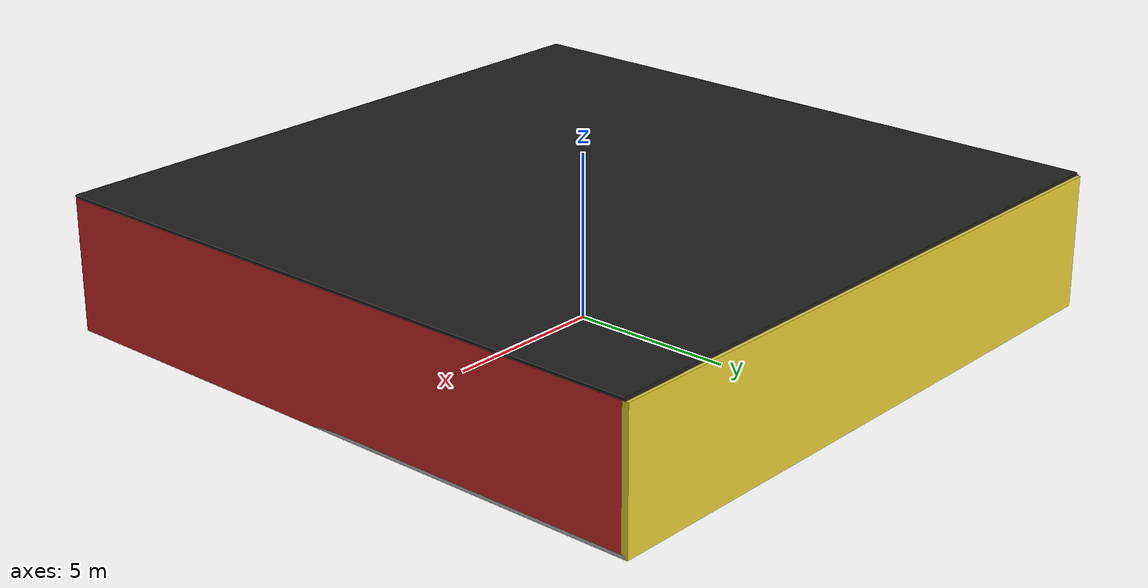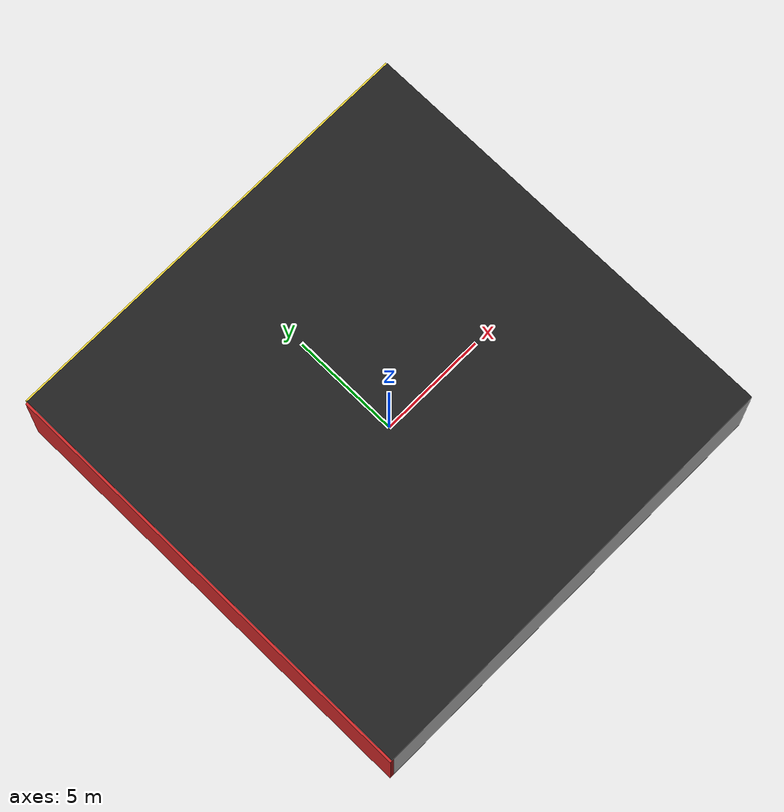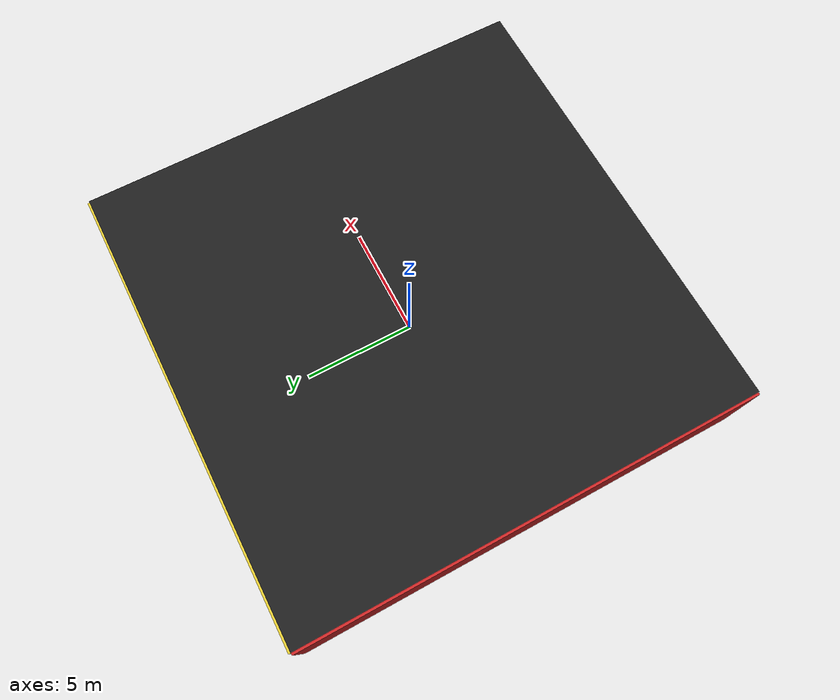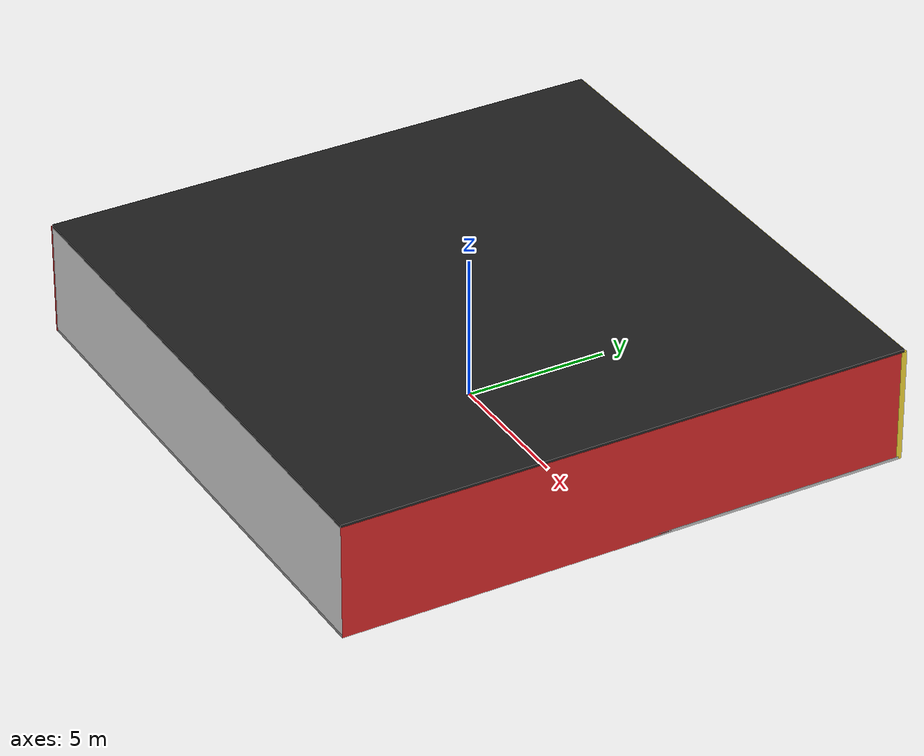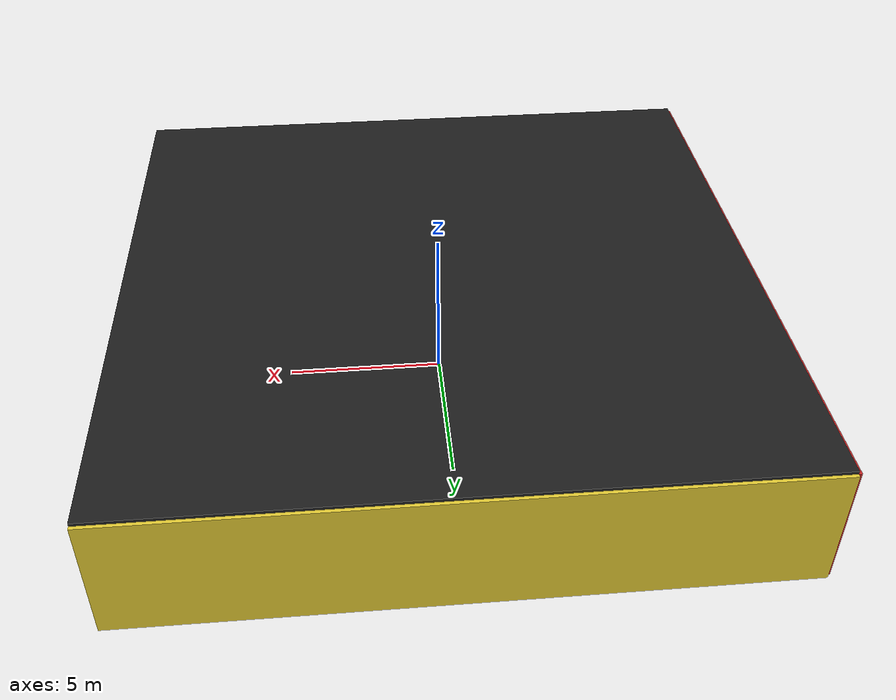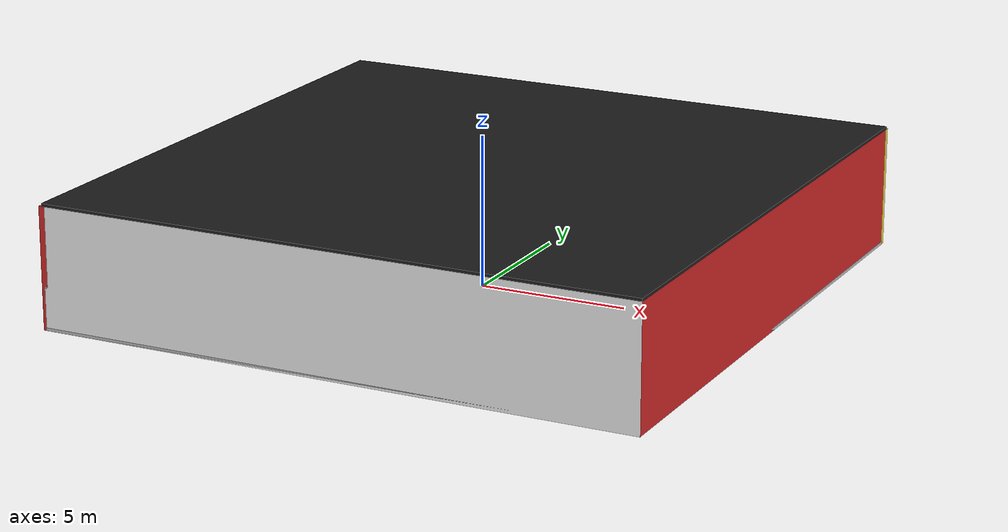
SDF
<sdf version="1.4">
 <world name="default">
  <physics type="ode">
   <max_step_size>0.001</max_step_size>
   <real_time_factor>1</real_time_factor>
   <real_time_update_rate>1000</real_time_update_rate>
   <gravity>0 0 -9.8</gravity>
  </physics>
  <scene><ambient>0.4 0.4 0.4 1</ambient><background>0.7 0.7 0.7 1</background><shadows>1</shadows></scene>
  <model name="Surrounding">
   <static>1</static>
   <link name="Ceiling">
    <collision name="Ceiling_Collision"><geometry><box><size>20 20 0.1</size></box></geometry></collision>
    <visual name="Ceiling_Visual">
     <geometry><box><size>20 20 0.1</size></box></geometry>
     <material>
      <script><uri>file://media/materials/scripts/gazebo.material</uri><name>Gazebo/FlatBlack</name></script>
     </material>
    </visual>
    <pose>0 0 4.05 0 0 0</pose>
   </link>
   <link name="Wall_South">
    <collision name="Wall_South_Collision">
     <geometry><box><size>20 0 4</size></box></geometry>
     <pose>0 0 2 0 -0 0</pose>
    </collision>
    <visual name="Wall_South_Visual">
     <pose>0 0 2 0 -0 0</pose>
     <geometry><box><size>20 0 4</size></box></geometry>
     <material>
      <script><uri>file://media/materials/scripts/gazebo.material</uri><name>Gazebo/White</name></script>
     </material>
    </visual>
    <velocity_decay><linear>0</linear><angular>0</angular></velocity_decay>
    <pose>0 -10 0 0 -0 0</pose>
   </link>
   <link name="Wall_East">
    <collision name="Wall_21_Collision">
     <geometry><box><size>20 0 4</size></box></geometry>
     <pose>0 0 2 0 -0 0</pose>
    </collision>
    <visual name="Wall_21_Visual">
     <pose>0 0 2 0 -0 0</pose>
     <geometry><box><size>20 0 4</size></box></geometry>
     <material>
      <script><uri>file://media/materials/scripts/gazebo.material</uri><name>Gazebo/Red</name></script>
     </material>
    </visual>
    <velocity_decay><linear>0</linear><angular>0</angular></velocity_decay>
    <pose>10 0 0 0 -0 1.5708</pose>
   </link>
   <link name="Wall_North">
    <collision name="Wall_22_Collision">
     <geometry><box><size>20 0.2 4</size></box></geometry>
     <pose>0 0 2 0 -0 0</pose>
    </collision>
    <visual name="Wall_22_Visual">
     <pose>0 0 2 0 -0 0</pose>
     <geometry><box><size>20 0.2 4</size></box></geometry>
     <material>
      <script><uri>file://media/materials/scripts/gazebo.material</uri><name>Gazebo/ZincYellow</name></script>
     </material>
    </visual>
    <velocity_decay><linear>0</linear><angular>0</angular></velocity_decay>
    <pose>0 10 0 0 -0 0</pose>
   </link>
   <link name="Wall_West">
    <collision name="Wall_23_Collision">
     <geometry><box><size>20 0.2 4</size></box></geometry>
     <pose>0 0 2 0 -0 0</pose>
    </collision>
    <visual name="Wall_23_Visual">
     <pose>0 0 2 0 -0 0</pose>
     <geometry><box><size>20 0.2 4</size></box></geometry>
     <material>
      <script><uri>file://media/materials/scripts/gazebo.material</uri><name>Gazebo/RedBright</name></script>
     </material>
    </visual>
    <velocity_decay><linear>0</linear><angular>0</angular></velocity_decay>
    <pose>-10 0 0 0 0 -1.5708</pose>
   </link>
   <link name="Ground_link">
    <collision name="collision">
     <pose>0 0 .05 0 -0 0</pose>
     <geometry><box><size>20 20 0.1</size></box></geometry>
    </collision>
    <visual name="visual">
     <pose>0 0 .05 0 -0 0</pose>
     <geometry><box><size>20 20 0.1</size></box></geometry>
     <material>
      <script><uri>file://media/materials/scripts/gazebo.material</uri><name>Gazebo/PioneerBody</name></script>
     </material>
    </visual>
   </link>
   <static>1</static>
  </model>
  <spherical_coordinates>
   <surface_model>EARTH_WGS84</surface_model>
   <latitude_deg>0</latitude_deg>
   <longitude_deg>0</longitude_deg>
   <elevation>0</elevation>
   <heading_deg>0</heading_deg>
  </spherical_coordinates>
  <light name="lightball_0" type="diffuse">
   <diffuse>0.8 0.8 0.8 1</diffuse>
   <specular>0.2 0.2 0.2 1</specular>
   <attenuation>
    <range>100</range>
    <constant>0.7</constant>
    <linear>0.01</linear>
    <quadratic>0.001</quadratic>
   </attenuation>
   <direction>-0.5 0.1 -0.9</direction>
   <pose>2.13266354835 9.08707981879 2.8877284971 0 0 0</pose>
  </light>
  <light name="lightball_1" type="diffuse">
   <diffuse>0.8 0.8 0.8 1</diffuse>
   <specular>0.2 0.2 0.2 1</specular>
   <attenuation>
    <range>100</range>
    <constant>0.7</constant>
    <linear>0.01</linear>
    <quadratic>0.001</quadratic>
   </attenuation>
   <direction>-0.5 0.1 -0.9</direction>
   <pose>0.945173266913 -6.17603251587 2.05140185466 0 0 0</pose>
  </light>
  <light name="lightball_2" type="diffuse">
   <diffuse>0.8 0.8 0.8 1</diffuse>
   <specular>0.2 0.2 0.2 1</specular>
   <attenuation>
    <range>100</range>
    <constant>0.7</constant>
    <linear>0.01</linear>
    <quadratic>0.001</quadratic>
   </attenuation>
   <direction>-0.5 0.1 -0.9</direction>
   <pose>-8.36973572397 4.66907787675 1.68453182095 0 0 0</pose>
  </light>
  <light name="lightball_3" type="diffuse">
   <diffuse>0.8 0.8 0.8 1</diffuse>
   <specular>0.2 0.2 0.2 1</specular>
   <attenuation>
    <range>100</range>
    <constant>0.7</constant>
    <linear>0.01</linear>
    <quadratic>0.001</quadratic>
   </attenuation>
   <direction>-0.5 0.1 -0.9</direction>
   <pose>-1.11156007176 -3.83044978647 1.76659309352 0 0 0</pose>
  </light>
  <include>
   <uri>model://robocup_3Dsim_goal</uri>
   <pose>-1.05793990138 4.96537573898 0 0 0 1.30538363513</pose>
  </include>
  <include><uri>model://cabinet</uri><pose>-0.985166935119 8.01132889234 0 0 0 1.91706064847</pose></include>
  <include>
   <uri>model://construction_cone</uri>
   <pose>1.29873488871 4.82574104836 0 0 0 2.35708095194</pose>
  </include>
  <include><uri>model://table</uri><pose>5.20106031626 1.73582286328 0 0 0 2.50993998016</pose></include>
  <include>
   <uri>model://construction_cone</uri>
   <pose>6.85534567475 2.09791581032 0 0 0 2.40622528753</pose>
  </include>
 </world>
</sdf>

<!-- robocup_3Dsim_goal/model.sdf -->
<sdf version="1.5">
  <model name="robocup_3d_goal">
    <static>true</static>
    <link name="left_post">
      <pose>0 1.05 0.45 0 0 0</pose>
      <collision name="collision">
        <geometry>
          <cylinder>
            <radius>0.05</radius>
            <length>0.9</length>
          </cylinder>
        </geometry>
      </collision>
      <visual name="visual">
        <geometry>
          <cylinder>
            <radius>0.05</radius>
            <length>0.9</length>
          </cylinder>
        </geometry>
        <material>
          <script>
            <uri>file://media/materials/scripts/gazebo.material</uri>
            <name>Gazebo/ZincYellow</name>
          </script>
        </material>
      </visual>
    </link>
    <link name="left_support_horiz_lower">
      <pose>0.30 1.05 0.01 0 0 0</pose>
      <collision name="collision">
        <geometry>
          <box>
            <size>0.50 0.02 0.02</size>
          </box>
        </geometry>
      </collision>
      <visual name="visual">
        <geometry>
          <box>
            <size>0.50 0.02 0.02</size>
          </box>
        </geometry>
        <material>
          <script>
            <uri>file://media/materials/scripts/gazebo.material</uri>
            <name>Gazebo/White</name>
          </script>
        </material>
      </visual>
    </link>
    <link name="left_support_horiz_upper">
      <pose>0.30 1.05 0.79 0 0 0</pose>
      <collision name="collision">
        <geometry>
          <box>
            <size>0.50 0.02 0.02</size>
          </box>
        </geometry>
      </collision>
      <visual name="visual">
        <geometry>
          <box>
            <size>0.50 0.02 0.02</size>
          </box>
        </geometry>
        <material>
          <script>
            <uri>file://media/materials/scripts/gazebo.material</uri>
            <name>Gazebo/White</name>
          </script>
        </material>
      </visual>
    </link>
    <link name="left_support_vertical">
      <pose>0.56 1.05 0.4 0 1.5708 0</pose>
      <collision name="collision">
        <geometry>
          <box>
            <size>0.80 0.02 0.02</size>
          </box>
        </geometry>
      </collision>
      <visual name="visual">
        <geometry>
          <box>
            <size>0.80 0.02 0.02</size>
          </box>
        </geometry>
        <material>
          <script>
            <uri>file://media/materials/scripts/gazebo.material</uri>
            <name>Gazebo/White</name>
          </script>
        </material>
      </visual>
    </link>
    <link name="right_support_horiz_lower">
      <pose>0.30 -1.05 0.01 0 0 0</pose>
      <collision name="collision">
        <geometry>
          <box>
            <size>0.50 0.02 0.02</size>
          </box>
        </geometry>
      </collision>
      <visual name="visual">
        <geometry>
          <box>
            <size>0.50 0.02 0.02</size>
          </box>
        </geometry>
        <material>
          <script>
            <uri>file://media/materials/scripts/gazebo.material</uri>
            <name>Gazebo/White</name>
          </script>
        </material>
      </visual>
    </link>
    <link name="right_support_horiz_upper">
      <pose>0.30 -1.05 0.79 0 0 0</pose>
      <collision name="collision">
        <geometry>
          <box>
            <size>0.50 0.02 0.02</size>
          </box>
        </geometry>
      </collision>
      <visual name="visual">
        <geometry>
          <box>
            <size>0.50 0.02 0.02</size>
          </box>
        </geometry>
        <material>
          <script>
            <uri>file://media/materials/scripts/gazebo.material</uri>
            <name>Gazebo/White</name>
          </script>
        </material>
      </visual>
    </link>
    <link name="right_support_vertical">
      <pose>0.56 -1.05 0.4 0 1.5708 0</pose>
      <collision name="collision">
        <geometry>
          <box>
            <size>0.80 0.02 0.02</size>
          </box>
        </geometry>
      </collision>
      <visual name="visual">
        <geometry>
          <box>
            <size>0.80 0.02 0.02</size>
          </box>
        </geometry>
        <material>
          <script>
            <uri>file://media/materials/scripts/gazebo.material</uri>
            <name>Gazebo/White</name>
          </script>
        </material>
      </visual>
    </link>
    <link name="center_support_horiz_lower">
      <pose>0.56 0 0.01 0 1.5708 0</pose>
      <collision name="collision">
        <geometry>
          <box>
            <size>0.02 2.08 0.02</size>
          </box>
        </geometry>
      </collision>
      <visual name="visual">
        <geometry>
          <box>
            <size>0.02 2.08 0.02</size>
          </box>
        </geometry>
        <material>
          <script>
            <uri>file://media/materials/scripts/gazebo.material</uri>
            <name>Gazebo/White</name>
          </script>
        </material>
      </visual>
    </link>
    <link name="center_support_horiz_upper">
      <pose>0.56 0 0.79 0 1.5708 0</pose>
      <collision name="collision">
        <geometry>
          <box>
            <size>0.02 2.08 0.02</size>
          </box>
        </geometry>
      </collision>
      <visual name="visual">
        <geometry>
          <box>
            <size>0.02 2.08 0.02</size>
          </box>
        </geometry>
        <material>
          <script>
            <uri>file://media/materials/scripts/gazebo.material</uri>
            <name>Gazebo/White</name>
          </script>
        </material>
      </visual>
    </link>
    <link name="right_post">
      <pose>0 -1.05 0.45 0 0 0</pose>
      <collision name="collision">
        <geometry>
          <cylinder>
            <radius>0.05</radius>
            <length>0.9</length>
          </cylinder>
        </geometry>
      </collision>
      <visual name="visual">
        <geometry>
          <cylinder>
            <radius>0.05</radius>
            <length>0.9</length>
          </cylinder>
        </geometry>
        <material>
          <script>
            <uri>file://media/materials/scripts/gazebo.material</uri>
            <name>Gazebo/ZincYellow</name>
          </script>
        </material>
      </visual>
    </link>
    <link name="crossbar">
      <pose>0 0 0.85 1.57 1.57 0</pose>
      <collision name="collision">
        <geometry>
          <cylinder>
            <radius>0.05</radius>
            <length>2.0</length>
          </cylinder>
        </geometry>
      </collision>
      <visual name="visual">
        <geometry>
          <cylinder>
            <radius>0.05</radius>
            <length>2.0</length>
          </cylinder>
        </geometry>
        <material>
          <script>
            <uri>file://media/materials/scripts/gazebo.material</uri>
            <name>Gazebo/ZincYellow</name>
          </script>
        </material>
      </visual>
    </link>
    <link name="center_net">
      <pose>0.56 0 0.40 0 0 0</pose>
      <collision name="collision">
        <geometry>
          <box>
            <size>0.01 2.1 0.80</size>
          </box>
        </geometry>
      </collision>
      <visual name="visual">
        <geometry>
          <box>
            <size>0.01 2.1 0.80</size>
          </box>
        </geometry>
        <material>
          <script>
            <uri>model://../model_source/models/robocup09_spl_field/materials/scripts/</uri>
            <uri>model://../model_source/models/robocup09_spl_field/materials/textures/</uri>
            <name>RoboCup/Net</name>
          </script>
        </material>
      </visual>
    </link>
    <link name="left_net">
      <pose>0.30 1.05 0.40 0 0 0</pose>
      <collision name="collision">
        <geometry>
          <box>
            <size>0.50 0.01 0.76</size>
          </box>
        </geometry>
      </collision>
      <visual name="visual">
        <geometry>
          <box>
            <size>0.50 0.01 0.76</size>
          </box>
        </geometry>
        <material>
          <script>
            <uri>model://../model_source/models/robocup09_spl_field/materials/scripts/</uri>
            <uri>model://../model_source/models/robocup09_spl_field/materials/textures/</uri>
            <name>RoboCup/Net</name>
          </script>
        </material>
      </visual>
    </link>
    <link name="right_net">
      <pose>0.30 -1.05 0.40 0 0 0</pose>
      <collision name="collision">
        <geometry>
          <box>
            <size>0.50 0.01 0.76</size>
          </box>
        </geometry>
      </collision>
      <visual name="visual">
        <geometry>
          <box>
            <size>0.50 0.01 0.76</size>
          </box>
        </geometry>
        <material>
          <script>
            <uri>model://../model_source/models/robocup09_spl_field/materials/scripts/</uri>
            <uri>model://../model_source/models/robocup09_spl_field/materials/textures/</uri>
            <name>RoboCup/Net</name>
          </script>
        </material>
      </visual>
    </link>
  </model>
</sdf>

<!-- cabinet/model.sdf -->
<sdf version="1.5">
  <model name="cabinet">
    <static>true</static>
    <link name="cabinet_bottom_plate">
      <inertial>
        <pose>0 0 -1 0 0 0</pose>
        <inertia>
          <ixx>2.050000</ixx>
          <ixy>0</ixy>
          <ixz>0</ixz>
          <iyy>2.050000</iyy>
          <iyz>0</iyz>
          <izz>2.050000</izz>
        </inertia>
        <mass>25.000000</mass>
      </inertial>
      <collision name="cabinet_bottom_plate_geom">
        <pose>0 0 0.010000 0 0 0</pose>
        <geometry>
          <box>
            <size>0.450000 0.450000 0.020000</size>
          </box>
        </geometry>
      </collision>
      <visual name="cabinet_bottom_plate_geom_visual">
        <pose>0 0 0.010000 0 0 0</pose>
        <geometry>
          <box>
            <size>0.450000 0.450000 0.020000</size>
          </box>
        </geometry>
        <material>
          <script>
            <uri>model://media/materials/scripts/gazebo.material</uri>
            <name>Gazebo/Wood</name>
          </script>
        </material>
      </visual>
      <collision name="cabinet_bottom_plate_geom_cabinet_back_plate">
        <pose>0.235000 0 0.510000 0 0 0</pose>
        <geometry>
          <box>
            <size>0.020000 0.450000 1.020000</size>
          </box>
        </geometry>
      </collision>
      <visual name="cabinet_bottom_plate_geom_cabinet_back_plate_visual">
        <pose>0.235000 0 0.510000 0 0 0</pose>
        <geometry>
          <box>
            <size>0.020000 0.450000 1.020000</size>
          </box>
        </geometry>
        <material>
          <script>
            <uri>model://media/materials/scripts/gazebo.material</uri>
            <name>Gazebo/Wood</name>
          </script>
        </material>
      </visual>
      <collision name="cabinet_bottom_plate_geom_cabinet_left_plate">
        <pose>0 0.235000 0.510000 0 0 0</pose>
        <geometry>
          <box>
            <size>0.450000 0.020000 1.020000</size>
          </box>
        </geometry>
      </collision>
      <visual name="cabinet_bottom_plate_geom_cabinet_left_plate_visual">
        <pose>0 0.235000 0.510000 0 0 0</pose>
        <geometry>
          <box>
            <size>0.450000 0.020000 1.020000</size>
          </box>
        </geometry>
        <material>
          <script>
            <uri>model://media/materials/scripts/gazebo.material</uri>
            <name>Gazebo/Wood</name>
          </script>
        </material>
      </visual>
      <collision name="cabinet_bottom_plate_geom_cabinet_middle_plate">
        <pose>0 0 0.510000 0 0 0</pose>
        <geometry>
          <box>
            <size>0.450000 0.450000 0.020000</size>
          </box>
        </geometry>
      </collision>
      <visual name="cabinet_bottom_plate_geom_cabinet_middle_plate_visual">
        <pose>0 0 0.510000 0 0 0</pose>
        <geometry>
          <box>
            <size>0.450000 0.450000 0.020000</size>
          </box>
        </geometry>
        <material>
          <script>
            <uri>model://media/materials/scripts/gazebo.material</uri>
            <name>Gazebo/Wood</name>
          </script>
        </material>
      </visual>
      <collision name="cabinet_bottom_plate_geom_cabinet_right_plate">
        <pose>0 -0.235000 0.510000 0 0 0</pose>
        <geometry>
          <box>
            <size>0.450000 0.020000 1.020000</size>
          </box>
        </geometry>
      </collision>
      <visual name="cabinet_bottom_plate_geom_cabinet_right_plate_visual">
        <pose>0 -0.235000 0.510000 0 0 0</pose>
        <geometry>
          <box>
            <size>0.450000 0.020000 1.020000</size>
          </box>
        </geometry>
        <material>
          <script>
            <uri>model://media/materials/scripts/gazebo.material</uri>
            <name>Gazebo/Wood</name>
          </script>
        </material>
      </visual>
      <collision name="cabinet_bottom_plate_geom_cabinet_top_plate">
        <pose>0 0 1.010000 0 0 0</pose>
        <geometry>
          <box>
            <size>0.450000 0.450000 0.020000</size>
          </box>
        </geometry>
      </collision>
      <visual name="cabinet_bottom_plate_geom_cabinet_top_plate_visual">
        <pose>0 0 1.010000 0 0 0</pose>
        <geometry>
          <box>
            <size>0.450000 0.450000 0.020000</size>
          </box>
        </geometry>
        <material>
          <script>
            <uri>model://media/materials/scripts/gazebo.material</uri>
            <name>Gazebo/Wood</name>
          </script>
        </material>
      </visual>
    </link>
  </model>
</sdf>

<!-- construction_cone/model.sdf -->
<sdf version="1.5">
  <model name="Construction Cone">
    <link name="link">
      <collision name="collision">
        <geometry>
          <mesh>
            <scale>10 10 10</scale>
            <uri>file://isr-testbed/construction_cone/meshes/construction_cone.dae</uri>
          </mesh>
        </geometry>
      </collision>
      <visual name="visual">
        <geometry>
          <mesh>
            <scale>10 10 10</scale>
            <uri>file://isr-testbed/construction_cone/meshes/construction_cone.dae</uri>
          </mesh>
        </geometry>
      </visual>
    </link>
  </model>
</sdf>

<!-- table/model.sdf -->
<sdf version="1.5">
  <model name="table">
    <static>true</static>
    <link name="link">
      <collision name="surface">
        <pose>0 0 1.0 0 0 0</pose>
        <geometry>
          <box>
            <size>1.5 0.8 0.03</size>
          </box>
        </geometry>
        <surface>
          <friction>
            <ode>
              <mu>0.6</mu>
              <mu2>0.6</mu2>
            </ode>
          </friction>
        </surface>
      </collision>
      <visual name="visual1">
        <pose>0 0 1.0 0 0 0</pose>
        <geometry>
          <box>
            <size>1.5 0.8 0.03</size>
          </box>
        </geometry>
        <material>
          <script>
            <uri>model://media/materials/scripts/gazebo.material</uri>
            <name>Gazebo/Wood</name>
          </script>
        </material>
      </visual>
      <collision name="front_left_leg">
        <pose>0.68 0.38 0.5 0 0 0</pose>
        <geometry>
          <cylinder>
            <radius>0.02</radius>
            <length>1.0</length>
          </cylinder>
        </geometry>
      </collision>
      <visual name="front_left_leg">
        <pose>0.68 0.38 0.5 0 0 0</pose>
        <geometry>
          <cylinder>
            <radius>0.02</radius>
            <length>1.0</length>
          </cylinder>
        </geometry>
        <material>
          <script>
            <uri>model://media/materials/scripts/gazebo.material</uri>
            <name>Gazebo/Grey</name>
          </script>
        </material>
      </visual>
      <collision name="front_right_leg">
        <pose>0.68 -0.38 0.5 0 0 0</pose>
        <geometry>
          <cylinder>
            <radius>0.02</radius>
            <length>1.0</length>
          </cylinder>
        </geometry>
      </collision>
      <visual name="front_right_leg">
        <pose>0.68 -0.38 0.5 0 0 0</pose>
        <geometry>
          <cylinder>
            <radius>0.02</radius>
            <length>1.0</length>
          </cylinder>
        </geometry>
        <material>
          <script>
            <uri>model://media/materials/scripts/gazebo.material</uri>
            <name>Gazebo/Grey</name>
          </script>
        </material>
      </visual>
      <collision name="back_right_leg">
        <pose>-0.68 -0.38 0.5 0 0 0</pose>
        <geometry>
          <cylinder>
            <radius>0.02</radius>
            <length>1.0</length>
          </cylinder>
        </geometry>
      </collision>
      <visual name="back_right_leg">
        <pose>-0.68 -0.38 0.5 0 0 0</pose>
        <geometry>
          <cylinder>
            <radius>0.02</radius>
            <length>1.0</length>
          </cylinder>
        </geometry>
        <material>
          <script>
            <uri>model://media/materials/scripts/gazebo.material</uri>
            <name>Gazebo/Grey</name>
          </script>
        </material>
      </visual>
      <collision name="back_left_leg">
        <pose>-0.68 0.38 0.5 0 0 0</pose>
        <geometry>
          <cylinder>
            <radius>0.02</radius>
            <length>1.0</length>
          </cylinder>
        </geometry>
      </collision>
      <visual name="back_left_leg">
        <pose>-0.68 0.38 0.5 0 0 0</pose>
        <geometry>
          <cylinder>
            <radius>0.02</radius>
            <length>1.0</length>
          </cylinder>
        </geometry>
        <material>
          <script>
            <uri>model://media/materials/scripts/gazebo.material</uri>
            <name>Gazebo/Grey</name>
          </script>
        </material>
      </visual>
    </link>
  </model>
</sdf>
